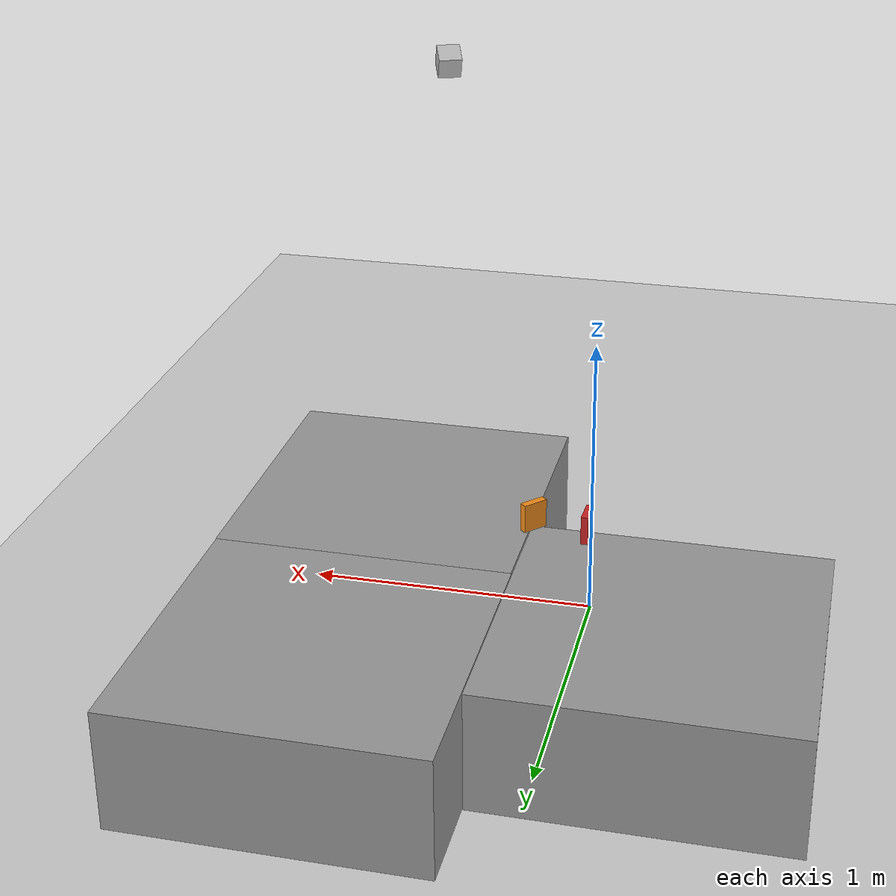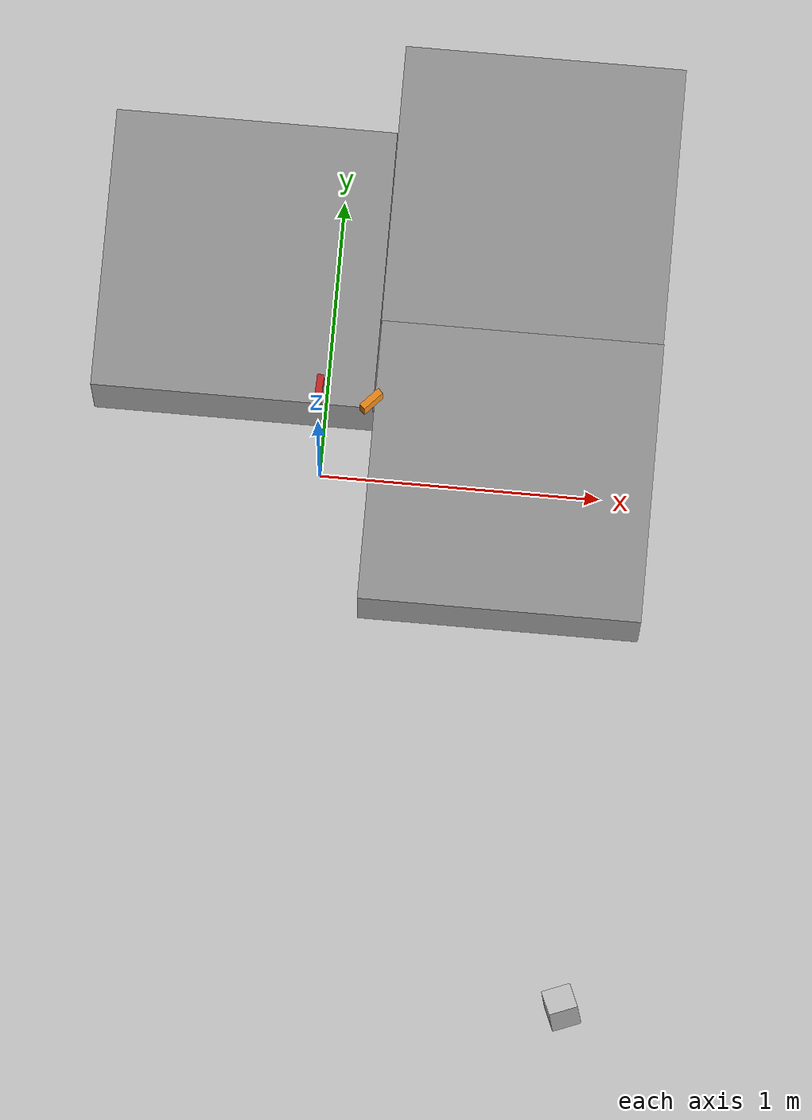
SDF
<sdf version="1.4">
 <world name="prueba1">
  <model name="ground_plane">
   <static>1</static>
   <link name="link">
    <collision name="collision">
     <geometry><plane><normal>0 0 1</normal><size>100 100</size></plane></geometry>
     <surface><friction><ode><mu>100</mu><mu2>50</mu2></ode></friction></surface>
    </collision>
    <visual name="visual">
     <cast_shadows>0</cast_shadows>
     <geometry><plane><normal>0 0 1</normal><size>100 100</size></plane></geometry>
     <material>
      <script><uri>file://media/materials/scripts/gazebo.material</uri><name>Gazebo/Grey</name></script>
     </material>
    </visual>
    <velocity_decay><linear>0</linear><angular>0</angular></velocity_decay>
   </link>
  </model>
  <model name="camera">
   <link name="link">
    <pose>1 -2 1.40 0 0.486 1.946</pose>
    <inertial><mass>0.1</mass></inertial>
    <collision name="collision"><geometry><box><size>0.1 0.1 0.1</size></box></geometry></collision>
    <visual name="visual"><geometry><box><size>0.1 0.1 0.1</size></box></geometry></visual>
    <sensor name="camera" type="camera">
     <camera>
      <horizontal_fov>1.047</horizontal_fov>
      <image><width>640</width><height>480</height></image>
      <clip><near>0.1</near><far>100</far></clip>
      <save enabled="true"><path>/home/marina/video/</path></save>
     </camera>
     <always_on>1</always_on>
     <update_rate>30</update_rate>
     <visualize>true</visualize>
    </sensor>
    <gravity>0</gravity>
   </link>
  </model>
  <light name="sun" type="directional">
   <pose>0 0 10 0 -0 0</pose>
   <diffuse>0.8 0.8 0.8 1</diffuse>
   <specular>0.2 0.2 0.2 1</specular>
   <attenuation>
    <range>1000</range>
    <constant>0.9</constant>
    <linear>0.01</linear>
    <quadratic>0.001</quadratic>
   </attenuation>
   <direction>-0.5 0.1 -0.9</direction>
  </light>
  <physics type="ode">
   <max_step_size>0.001</max_step_size>
   <real_time_factor>1</real_time_factor>
   <real_time_update_rate>1000</real_time_update_rate>
   <gravity>0 0 -9.8</gravity>
  </physics>
  <scene><ambient>0.4 0.4 0.4 1</ambient><background>0.7 0.7 0.7 1</background><shadows>1</shadows></scene>
  <spherical_coordinates>
   <surface_model>EARTH_WGS84</surface_model>
   <latitude_deg>0</latitude_deg>
   <longitude_deg>0</longitude_deg>
   <elevation>0</elevation>
   <heading_deg>0</heading_deg>
  </spherical_coordinates>
  <model name="unit_box_1">
   <static>1</static>
   <pose>0.677079 4.9e-05 0.203544 4.03897e-28 -3e-06 1e-06</pose>
   <link name="link_box_1">
    <inertial>
     <mass>1</mass>
     <inertia><ixx>1</ixx><ixy>0</ixy><ixz>0</ixz><iyy>1</iyy><iyz>0</iyz><izz>1</izz></inertia>
    </inertial>
    <collision name="collision">
     <geometry><box><size>1 1 0.407127</size></box></geometry>
     <surface><friction><ode><mu>100</mu><mu2>50</mu2></ode></friction></surface>
    </collision>
    <visual name="visual">
     <geometry><box><size>1 1 0.407127</size></box></geometry>
     <material>
      <script><uri>file://media/materials/scripts/gazebo.material</uri><name>Gazebo/Grey</name></script>
     </material>
    </visual>
    <velocity_decay><linear>0</linear><angular>0</angular></velocity_decay>
   </link>
   <static>0</static>
  </model>
  <model name="unit_box_3">
   <pose>-0.019852 0.2236930 0.457140 -0.000006 0.000011 1.532373</pose>
   <link name="link_box_3">
    <inertial>
     <mass>0.5</mass>
     <inertia><ixx>0.0001</ixx><ixy>0</ixy><ixz>0</ixz><iyy>0.00005</iyy><iyz>0</iyz><izz>0.0001</izz></inertia>
    </inertial>
    <collision name="collision">
     <geometry><box><size>0.087152 0.024171 0.100067</size></box></geometry>
    </collision>
    <visual name="visual">
     <geometry><box><size>0.087152 0.024171 0.100067</size></box></geometry>
     <material>
      <script><uri>file://media/materials/scripts/gazebo.material</uri><name>Gazebo/Red</name></script>
     </material>
    </visual>
    <velocity_decay><linear>0</linear><angular>0</angular></velocity_decay>
   </link>
   <static>0</static>
  </model>
  <model name="unit_box_4">
   <pose>0.166217 0.19509 0.457140 0.000271 0.000098 0.818366</pose>
   <link name="link_box_4">
    <inertial>
     <mass>0.5</mass>
     <inertia><ixx>0.0001</ixx><ixy>0</ixy><ixz>0</ixz><iyy>0.00005</iyy><iyz>0</iyz><izz>0.0001</izz></inertia>
    </inertial>
    <collision name="collision">
     <geometry><box><size>0.087152 0.024171 0.100067</size></box></geometry>
    </collision>
    <visual name="visual">
     <geometry><box><size>0.087152 0.024171 0.100067</size></box></geometry>
     <material>
      <script><uri>file://media/materials/scripts/gazebo.material</uri><name>Gazebo/Orange</name></script>
     </material>
    </visual>
    <velocity_decay><linear>0</linear><angular>0</angular></velocity_decay>
   </link>
   <static>0</static>
  </model>
  <model name="unit_box_2">
   <static>1</static>
   <pose>0.675242 1.00005 0.203544 0 0 -1e-06</pose>
   <link name="link_box_2">
    <inertial>
     <mass>1</mass>
     <inertia><ixx>1</ixx><ixy>0</ixy><ixz>0</ixz><iyy>1</iyy><iyz>0</iyz><izz>1</izz></inertia>
    </inertial>
    <collision name="collision">
     <geometry><box><size>1 1 0.407127</size></box></geometry>
     <surface><friction><ode><mu>100</mu><mu2>50</mu2></ode></friction></surface>
    </collision>
    <visual name="visual">
     <geometry><box><size>1 1 0.407127</size></box></geometry>
     <material>
      <script><uri>file://media/materials/scripts/gazebo.material</uri><name>Gazebo/Grey</name></script>
     </material>
    </visual>
    <velocity_decay><linear>0</linear><angular>0</angular></velocity_decay>
   </link>
   <static>0</static>
  </model>
  <model name="unit_box_3_0">
   <static>1</static>
   <pose>-0.327360 0.681498 0.203544 0 0 0</pose>
   <link name="link_box_3_0">
    <inertial>
     <mass>1</mass>
     <inertia><ixx>1</ixx><ixy>0</ixy><ixz>0</ixz><iyy>1</iyy><iyz>0</iyz><izz>1</izz></inertia>
    </inertial>
    <collision name="collision">
     <geometry><box><size>1 1 0.407127</size></box></geometry>
     <surface><friction><ode><mu>100</mu><mu2>50</mu2></ode></friction></surface>
    </collision>
    <visual name="visual">
     <geometry><box><size>1 1 0.407127</size></box></geometry>
     <material>
      <script><uri>file://media/materials/scripts/gazebo.material</uri><name>Gazebo/Grey</name></script>
     </material>
    </visual>
    <velocity_decay><linear>0</linear><angular>0</angular></velocity_decay>
   </link>
   <static>0</static>
  </model>
 </world>
</sdf>
